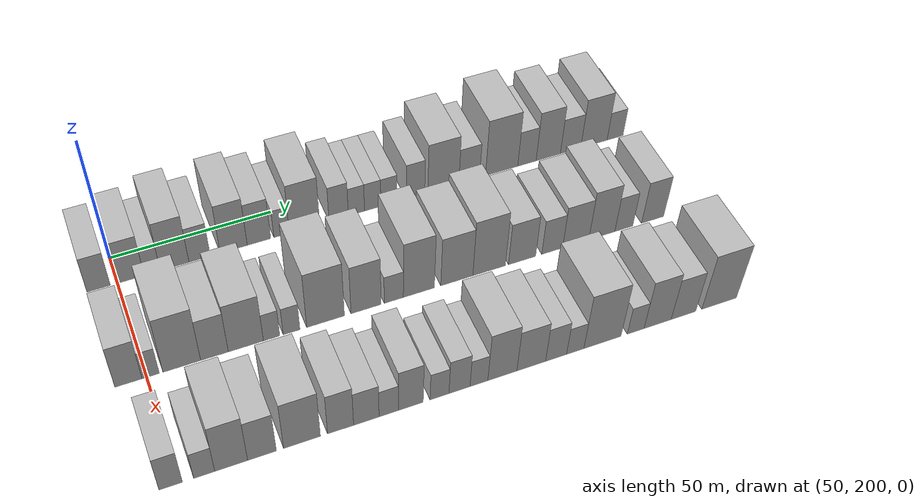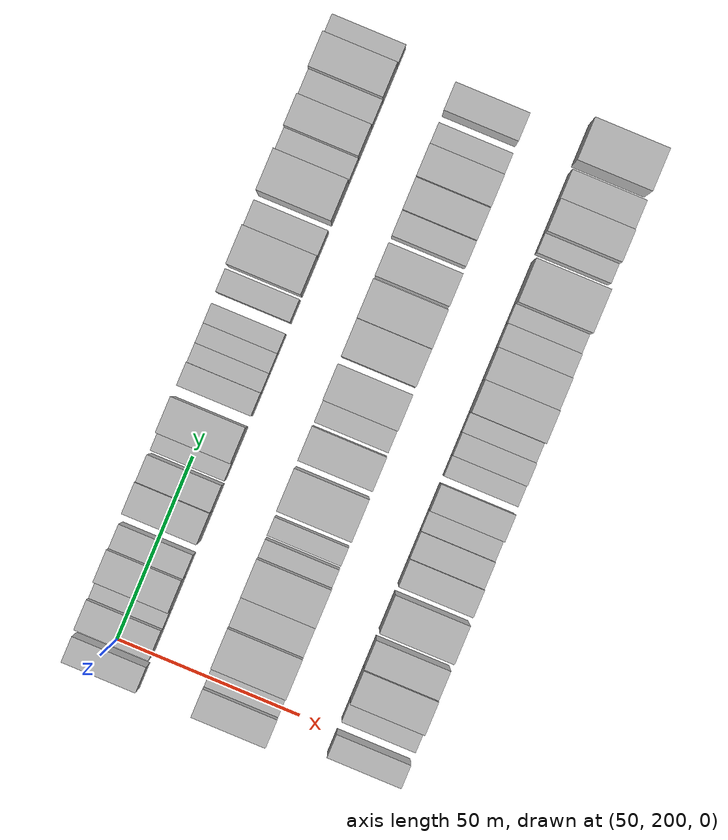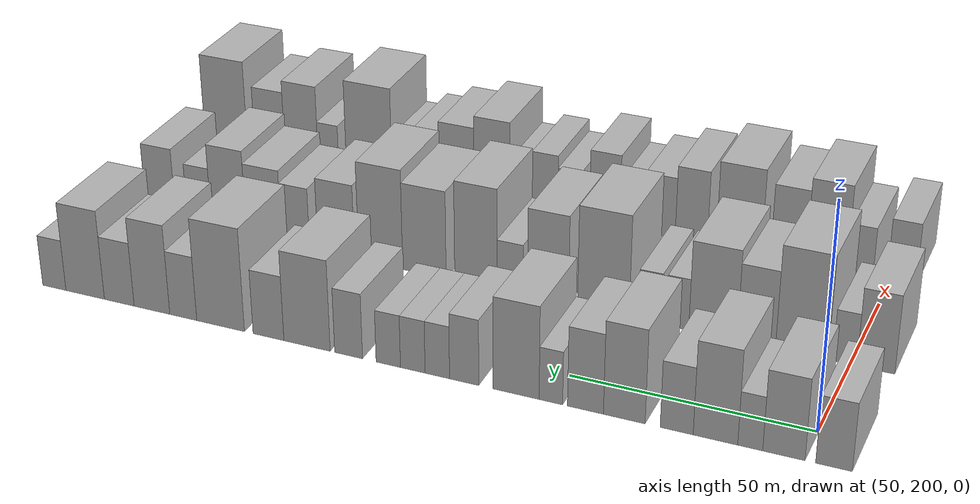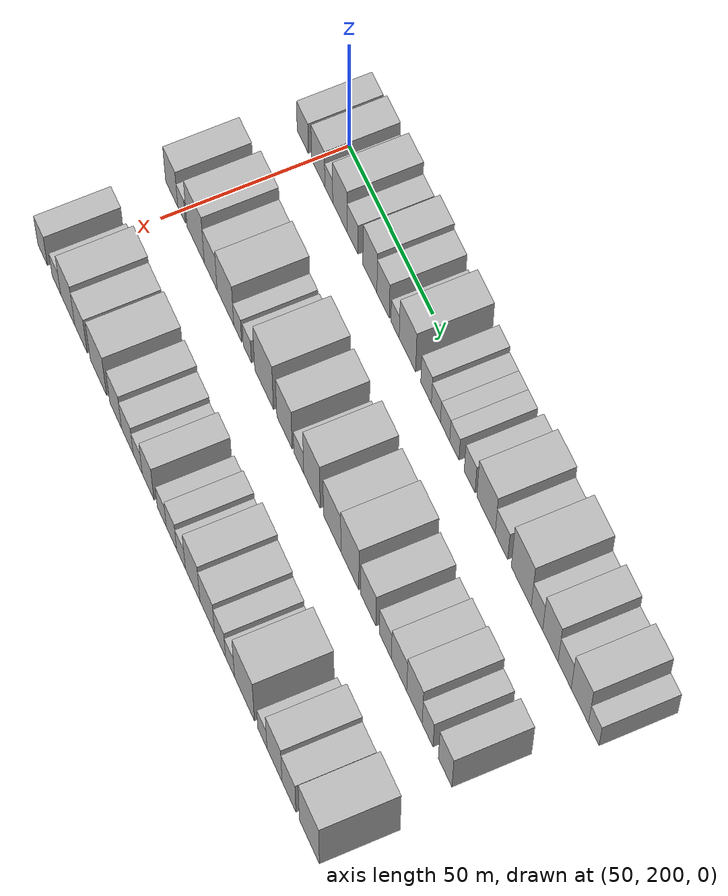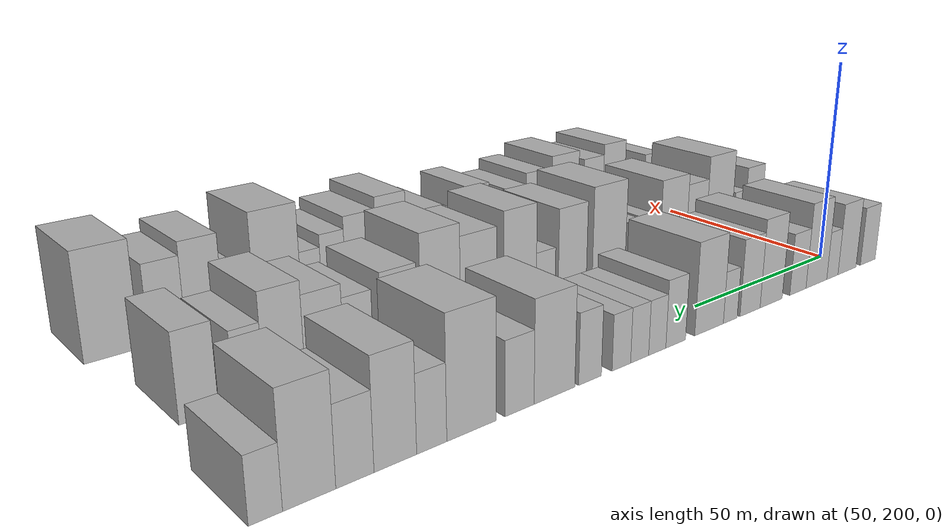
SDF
<sdf version="1.6">
 <world name="default">
  <model name="building_58">
   <static>1</static>
   <pose>50.0000 194.3728 0 0.000000 0.000000 0.000000</pose>
   <link name="link">
    <pose>0 0 7.50 0 0 0</pose>
    <collision name="collision"><geometry><box><size>20.0000 6.9147 15.0000</size></box></geometry></collision>
    <visual name="visual">
     <cast_shadows>0</cast_shadows>
     <geometry><box><size>20.0000 6.9147 15.0000</size></box></geometry>
     <material>
      <script>
       <uri>model://HANNAS_wall/materials/scripts</uri>
       <uri>model://HANNAS_wall/materials/textures</uri>
       <name>vrc/HANNAS_wall</name>
      </script>
     </material>
    </visual>
   </link>
  </model>
  <model name="building_59">
   <static>1</static>
   <pose>50.0000 203.8726 0 0.000000 0.000000 0.000000</pose>
   <link name="link">
    <pose>0 0 9.00 0 0 0</pose>
    <collision name="collision"><geometry><box><size>20.0000 8.0849 18.0000</size></box></geometry></collision>
    <visual name="visual">
     <cast_shadows>0</cast_shadows>
     <geometry><box><size>20.0000 8.0849 18.0000</size></box></geometry>
     <material>
      <script>
       <uri>model://HANNAS_wall/materials/scripts</uri>
       <uri>model://HANNAS_wall/materials/textures</uri>
       <name>vrc/HANNAS_wall</name>
      </script>
     </material>
    </visual>
   </link>
  </model>
  <model name="building_60">
   <static>1</static>
   <pose>50.0000 210.3365 0 0.000000 0.000000 0.000000</pose>
   <link name="link">
    <pose>0 0 6.00 0 0 0</pose>
    <collision name="collision"><geometry><box><size>20.0000 4.8430 12.0000</size></box></geometry></collision>
    <visual name="visual">
     <cast_shadows>0</cast_shadows>
     <geometry><box><size>20.0000 4.8430 12.0000</size></box></geometry>
     <material>
      <script>
       <uri>model://HANNAS_wall/materials/scripts</uri>
       <uri>model://HANNAS_wall/materials/textures</uri>
       <name>vrc/HANNAS_wall</name>
      </script>
     </material>
    </visual>
   </link>
  </model>
  <model name="building_61">
   <static>1</static>
   <pose>50.0000 217.1121 0 0.000000 0.000000 0.000000</pose>
   <link name="link">
    <pose>0 0 10.50 0 0 0</pose>
    <collision name="collision"><geometry><box><size>20.0000 8.7081 21.0000</size></box></geometry></collision>
    <visual name="visual">
     <cast_shadows>0</cast_shadows>
     <geometry><box><size>20.0000 8.7081 21.0000</size></box></geometry>
     <material>
      <script>
       <uri>model://HANNAS_wall/materials/scripts</uri>
       <uri>model://HANNAS_wall/materials/textures</uri>
       <name>vrc/HANNAS_wall</name>
      </script>
     </material>
    </visual>
   </link>
  </model>
  <model name="building_62">
   <static>1</static>
   <pose>50.0000 224.7363 0 0.000000 0.000000 0.000000</pose>
   <link name="link">
    <pose>0 0 7.50 0 0 0</pose>
    <collision name="collision"><geometry><box><size>20.0000 6.5404 15.0000</size></box></geometry></collision>
    <visual name="visual">
     <cast_shadows>0</cast_shadows>
     <geometry><box><size>20.0000 6.5404 15.0000</size></box></geometry>
     <material>
      <script>
       <uri>model://HANNAS_wall/materials/scripts</uri>
       <uri>model://HANNAS_wall/materials/textures</uri>
       <name>vrc/HANNAS_wall</name>
      </script>
     </material>
    </visual>
   </link>
  </model>
  <model name="building_63">
   <static>1</static>
   <pose>50.0000 235.2169 0 0.000000 0.000000 0.000000</pose>
   <link name="link">
    <pose>0 0 10.50 0 0 0</pose>
    <collision name="collision"><geometry><box><size>20.0000 8.4208 21.0000</size></box></geometry></collision>
    <visual name="visual">
     <cast_shadows>0</cast_shadows>
     <geometry><box><size>20.0000 8.4208 21.0000</size></box></geometry>
     <material>
      <script>
       <uri>model://HANNAS_wall/materials/scripts</uri>
       <uri>model://HANNAS_wall/materials/textures</uri>
       <name>vrc/HANNAS_wall</name>
      </script>
     </material>
    </visual>
   </link>
  </model>
  <model name="building_64">
   <static>1</static>
   <pose>50.0000 243.1015 0 0.000000 0.000000 0.000000</pose>
   <link name="link">
    <pose>0 0 9.00 0 0 0</pose>
    <collision name="collision"><geometry><box><size>20.0000 7.3483 18.0000</size></box></geometry></collision>
    <visual name="visual">
     <cast_shadows>0</cast_shadows>
     <geometry><box><size>20.0000 7.3483 18.0000</size></box></geometry>
     <material>
      <script>
       <uri>model://HANNAS_wall/materials/scripts</uri>
       <uri>model://HANNAS_wall/materials/textures</uri>
       <name>vrc/HANNAS_wall</name>
      </script>
     </material>
    </visual>
   </link>
  </model>
  <model name="building_65">
   <static>1</static>
   <pose>50.0000 250.2090 0 0.000000 0.000000 0.000000</pose>
   <link name="link">
    <pose>0 0 6.00 0 0 0</pose>
    <collision name="collision"><geometry><box><size>20.0000 4.8668 12.0000</size></box></geometry></collision>
    <visual name="visual">
     <cast_shadows>0</cast_shadows>
     <geometry><box><size>20.0000 4.8668 12.0000</size></box></geometry>
     <material>
      <script>
       <uri>model://HANNAS_wall/materials/scripts</uri>
       <uri>model://HANNAS_wall/materials/textures</uri>
       <name>vrc/HANNAS_wall</name>
      </script>
     </material>
    </visual>
   </link>
  </model>
  <model name="building_66">
   <static>1</static>
   <pose>50.0000 257.4757 0 0.000000 0.000000 0.000000</pose>
   <link name="link">
    <pose>0 0 10.50 0 0 0</pose>
    <collision name="collision"><geometry><box><size>20.0000 9.6667 21.0000</size></box></geometry></collision>
    <visual name="visual">
     <cast_shadows>0</cast_shadows>
     <geometry><box><size>20.0000 9.6667 21.0000</size></box></geometry>
     <material>
      <script>
       <uri>model://HANNAS_wall/materials/scripts</uri>
       <uri>model://HANNAS_wall/materials/textures</uri>
       <name>vrc/HANNAS_wall</name>
      </script>
     </material>
    </visual>
   </link>
  </model>
  <model name="building_67">
   <static>1</static>
   <pose>50.0000 268.4259 0 0.000000 0.000000 0.000000</pose>
   <link name="link">
    <pose>0 0 7.50 0 0 0</pose>
    <collision name="collision"><geometry><box><size>20.0000 6.2337 15.0000</size></box></geometry></collision>
    <visual name="visual">
     <cast_shadows>0</cast_shadows>
     <geometry><box><size>20.0000 6.2337 15.0000</size></box></geometry>
     <material>
      <script>
       <uri>model://HANNAS_wall/materials/scripts</uri>
       <uri>model://HANNAS_wall/materials/textures</uri>
       <name>vrc/HANNAS_wall</name>
      </script>
     </material>
    </visual>
   </link>
  </model>
  <model name="building_68">
   <static>1</static>
   <pose>50.0000 274.1723 0 0.000000 0.000000 0.000000</pose>
   <link name="link">
    <pose>0 0 6.00 0 0 0</pose>
    <collision name="collision"><geometry><box><size>20.0000 5.2593 12.0000</size></box></geometry></collision>
    <visual name="visual">
     <cast_shadows>0</cast_shadows>
     <geometry><box><size>20.0000 5.2593 12.0000</size></box></geometry>
     <material>
      <script>
       <uri>model://HANNAS_wall/materials/scripts</uri>
       <uri>model://HANNAS_wall/materials/textures</uri>
       <name>vrc/HANNAS_wall</name>
      </script>
     </material>
    </visual>
   </link>
  </model>
  <model name="building_69">
   <static>1</static>
   <pose>50.0000 279.4774 0 0.000000 0.000000 0.000000</pose>
   <link name="link">
    <pose>0 0 6.00 0 0 0</pose>
    <collision name="collision"><geometry><box><size>20.0000 5.3509 12.0000</size></box></geometry></collision>
    <visual name="visual">
     <cast_shadows>0</cast_shadows>
     <geometry><box><size>20.0000 5.3509 12.0000</size></box></geometry>
     <material>
      <script>
       <uri>model://HANNAS_wall/materials/scripts</uri>
       <uri>model://HANNAS_wall/materials/textures</uri>
       <name>vrc/HANNAS_wall</name>
      </script>
     </material>
    </visual>
   </link>
  </model>
  <model name="building_70">
   <static>1</static>
   <pose>50.0000 284.8204 0 0.000000 0.000000 0.000000</pose>
   <link name="link">
    <pose>0 0 6.00 0 0 0</pose>
    <collision name="collision"><geometry><box><size>20.0000 5.3351 12.0000</size></box></geometry></collision>
    <visual name="visual">
     <cast_shadows>0</cast_shadows>
     <geometry><box><size>20.0000 5.3351 12.0000</size></box></geometry>
     <material>
      <script>
       <uri>model://HANNAS_wall/materials/scripts</uri>
       <uri>model://HANNAS_wall/materials/textures</uri>
       <name>vrc/HANNAS_wall</name>
      </script>
     </material>
    </visual>
   </link>
  </model>
  <model name="building_71">
   <static>1</static>
   <pose>50.0000 293.5836 0 0.000000 0.000000 0.000000</pose>
   <link name="link">
    <pose>0 0 7.50 0 0 0</pose>
    <collision name="collision"><geometry><box><size>20.0000 6.1914 15.0000</size></box></geometry></collision>
    <visual name="visual">
     <cast_shadows>0</cast_shadows>
     <geometry><box><size>20.0000 6.1914 15.0000</size></box></geometry>
     <material>
      <script>
       <uri>model://HANNAS_wall/materials/scripts</uri>
       <uri>model://HANNAS_wall/materials/textures</uri>
       <name>vrc/HANNAS_wall</name>
      </script>
     </material>
    </visual>
   </link>
  </model>
  <model name="building_72">
   <static>1</static>
   <pose>50.0000 302.9027 0 0.000000 0.000000 0.000000</pose>
   <link name="link">
    <pose>0 0 10.50 0 0 0</pose>
    <collision name="collision"><geometry><box><size>20.0000 10.4468 21.0000</size></box></geometry></collision>
    <visual name="visual">
     <cast_shadows>0</cast_shadows>
     <geometry><box><size>20.0000 10.4468 21.0000</size></box></geometry>
     <material>
      <script>
       <uri>model://HANNAS_wall/materials/scripts</uri>
       <uri>model://HANNAS_wall/materials/textures</uri>
       <name>vrc/HANNAS_wall</name>
      </script>
     </material>
    </visual>
   </link>
  </model>
  <model name="building_73">
   <static>1</static>
   <pose>50.0000 311.6492 0 0.000000 0.000000 0.000000</pose>
   <link name="link">
    <pose>0 0 7.50 0 0 0</pose>
    <collision name="collision"><geometry><box><size>20.0000 7.0461 15.0000</size></box></geometry></collision>
    <visual name="visual">
     <cast_shadows>0</cast_shadows>
     <geometry><box><size>20.0000 7.0461 15.0000</size></box></geometry>
     <material>
      <script>
       <uri>model://HANNAS_wall/materials/scripts</uri>
       <uri>model://HANNAS_wall/materials/textures</uri>
       <name>vrc/HANNAS_wall</name>
      </script>
     </material>
    </visual>
   </link>
  </model>
  <model name="building_74">
   <static>1</static>
   <pose>50.0000 322.7267 0 0.000000 0.000000 0.000000</pose>
   <link name="link">
    <pose>0 0 12.00 0 0 0</pose>
    <collision name="collision"><geometry><box><size>20.0000 11.1089 24.0000</size></box></geometry></collision>
    <visual name="visual">
     <cast_shadows>0</cast_shadows>
     <geometry><box><size>20.0000 11.1089 24.0000</size></box></geometry>
     <material>
      <script>
       <uri>model://HANNAS_wall/materials/scripts</uri>
       <uri>model://HANNAS_wall/materials/textures</uri>
       <name>vrc/HANNAS_wall</name>
      </script>
     </material>
    </visual>
   </link>
  </model>
  <model name="building_75">
   <static>1</static>
   <pose>50.0000 331.4624 0 0.000000 0.000000 0.000000</pose>
   <link name="link">
    <pose>0 0 7.50 0 0 0</pose>
    <collision name="collision"><geometry><box><size>20.0000 6.3625 15.0000</size></box></geometry></collision>
    <visual name="visual">
     <cast_shadows>0</cast_shadows>
     <geometry><box><size>20.0000 6.3625 15.0000</size></box></geometry>
     <material>
      <script>
       <uri>model://HANNAS_wall/materials/scripts</uri>
       <uri>model://HANNAS_wall/materials/textures</uri>
       <name>vrc/HANNAS_wall</name>
      </script>
     </material>
    </visual>
   </link>
  </model>
  <model name="building_76">
   <static>1</static>
   <pose>50.0000 338.9023 0 0.000000 0.000000 0.000000</pose>
   <link name="link">
    <pose>0 0 10.50 0 0 0</pose>
    <collision name="collision"><geometry><box><size>20.0000 8.5175 21.0000</size></box></geometry></collision>
    <visual name="visual">
     <cast_shadows>0</cast_shadows>
     <geometry><box><size>20.0000 8.5175 21.0000</size></box></geometry>
     <material>
      <script>
       <uri>model://HANNAS_wall/materials/scripts</uri>
       <uri>model://HANNAS_wall/materials/textures</uri>
       <name>vrc/HANNAS_wall</name>
      </script>
     </material>
    </visual>
   </link>
  </model>
  <model name="building_77">
   <static>1</static>
   <pose>50.0000 346.7569 0 0.000000 0.000000 0.000000</pose>
   <link name="link">
    <pose>0 0 7.50 0 0 0</pose>
    <collision name="collision"><geometry><box><size>20.0000 7.1917 15.0000</size></box></geometry></collision>
    <visual name="visual">
     <cast_shadows>0</cast_shadows>
     <geometry><box><size>20.0000 7.1917 15.0000</size></box></geometry>
     <material>
      <script>
       <uri>model://HANNAS_wall/materials/scripts</uri>
       <uri>model://HANNAS_wall/materials/textures</uri>
       <name>vrc/HANNAS_wall</name>
      </script>
     </material>
    </visual>
   </link>
  </model>
  <model name="building_78">
   <static>1</static>
   <pose>50.0000 355.0587 0 0.000000 0.000000 0.000000</pose>
   <link name="link">
    <pose>0 0 10.50 0 0 0</pose>
    <collision name="collision"><geometry><box><size>20.0000 9.4119 21.0000</size></box></geometry></collision>
    <visual name="visual">
     <cast_shadows>0</cast_shadows>
     <geometry><box><size>20.0000 9.4119 21.0000</size></box></geometry>
     <material>
      <script>
       <uri>model://HANNAS_wall/materials/scripts</uri>
       <uri>model://HANNAS_wall/materials/textures</uri>
       <name>vrc/HANNAS_wall</name>
      </script>
     </material>
    </visual>
   </link>
  </model>
  <model name="building_79">
   <static>1</static>
   <pose>50.0000 362.6301 0 0.000000 0.000000 0.000000</pose>
   <link name="link">
    <pose>0 0 6.00 0 0 0</pose>
    <collision name="collision"><geometry><box><size>20.0000 5.7309 12.0000</size></box></geometry></collision>
    <visual name="visual">
     <cast_shadows>0</cast_shadows>
     <geometry><box><size>20.0000 5.7309 12.0000</size></box></geometry>
     <material>
      <script>
       <uri>model://HANNAS_wall/materials/scripts</uri>
       <uri>model://HANNAS_wall/materials/textures</uri>
       <name>vrc/HANNAS_wall</name>
      </script>
     </material>
    </visual>
   </link>
  </model>
  <model name="building_146">
   <static>1</static>
   <pose>85.0000 194.8193 0 0.000000 0.000000 0.000000</pose>
   <link name="link">
    <pose>0 0 9.00 0 0 0</pose>
    <collision name="collision"><geometry><box><size>20.0000 7.6414 18.0000</size></box></geometry></collision>
    <visual name="visual">
     <cast_shadows>0</cast_shadows>
     <geometry><box><size>20.0000 7.6414 18.0000</size></box></geometry>
     <material>
      <script>
       <uri>model://HANNAS_wall/materials/scripts</uri>
       <uri>model://HANNAS_wall/materials/textures</uri>
       <name>vrc/HANNAS_wall</name>
      </script>
     </material>
    </visual>
   </link>
  </model>
  <model name="building_147">
   <static>1</static>
   <pose>85.0000 201.0676 0 0.000000 0.000000 0.000000</pose>
   <link name="link">
    <pose>0 0 6.00 0 0 0</pose>
    <collision name="collision"><geometry><box><size>20.0000 4.8550 12.0000</size></box></geometry></collision>
    <visual name="visual">
     <cast_shadows>0</cast_shadows>
     <geometry><box><size>20.0000 4.8550 12.0000</size></box></geometry>
     <material>
      <script>
       <uri>model://HANNAS_wall/materials/scripts</uri>
       <uri>model://HANNAS_wall/materials/textures</uri>
       <name>vrc/HANNAS_wall</name>
      </script>
     </material>
    </visual>
   </link>
  </model>
  <model name="building_148">
   <static>1</static>
   <pose>85.0000 209.8922 0 0.000000 0.000000 0.000000</pose>
   <link name="link">
    <pose>0 0 12.00 0 0 0</pose>
    <collision name="collision"><geometry><box><size>20.0000 10.7941 24.0000</size></box></geometry></collision>
    <visual name="visual">
     <cast_shadows>0</cast_shadows>
     <geometry><box><size>20.0000 10.7941 24.0000</size></box></geometry>
     <material>
      <script>
       <uri>model://HANNAS_wall/materials/scripts</uri>
       <uri>model://HANNAS_wall/materials/textures</uri>
       <name>vrc/HANNAS_wall</name>
      </script>
     </material>
    </visual>
   </link>
  </model>
  <model name="building_149">
   <static>1</static>
   <pose>85.0000 219.2916 0 0.000000 0.000000 0.000000</pose>
   <link name="link">
    <pose>0 0 9.00 0 0 0</pose>
    <collision name="collision"><geometry><box><size>20.0000 8.0048 18.0000</size></box></geometry></collision>
    <visual name="visual">
     <cast_shadows>0</cast_shadows>
     <geometry><box><size>20.0000 8.0048 18.0000</size></box></geometry>
     <material>
      <script>
       <uri>model://HANNAS_wall/materials/scripts</uri>
       <uri>model://HANNAS_wall/materials/textures</uri>
       <name>vrc/HANNAS_wall</name>
      </script>
     </material>
    </visual>
   </link>
  </model>
  <model name="building_150">
   <static>1</static>
   <pose>85.0000 228.4277 0 0.000000 0.000000 0.000000</pose>
   <link name="link">
    <pose>0 0 10.50 0 0 0</pose>
    <collision name="collision"><geometry><box><size>20.0000 10.2674 21.0000</size></box></geometry></collision>
    <visual name="visual">
     <cast_shadows>0</cast_shadows>
     <geometry><box><size>20.0000 10.2674 21.0000</size></box></geometry>
     <material>
      <script>
       <uri>model://HANNAS_wall/materials/scripts</uri>
       <uri>model://HANNAS_wall/materials/textures</uri>
       <name>vrc/HANNAS_wall</name>
      </script>
     </material>
    </visual>
   </link>
  </model>
  <model name="building_151">
   <static>1</static>
   <pose>85.0000 235.9817 0 0.000000 0.000000 0.000000</pose>
   <link name="link">
    <pose>0 0 6.00 0 0 0</pose>
    <collision name="collision"><geometry><box><size>20.0000 4.8405 12.0000</size></box></geometry></collision>
    <visual name="visual">
     <cast_shadows>0</cast_shadows>
     <geometry><box><size>20.0000 4.8405 12.0000</size></box></geometry>
     <material>
      <script>
       <uri>model://HANNAS_wall/materials/scripts</uri>
       <uri>model://HANNAS_wall/materials/textures</uri>
       <name>vrc/HANNAS_wall</name>
      </script>
     </material>
    </visual>
   </link>
  </model>
  <model name="building_152">
   <static>1</static>
   <pose>85.0000 241.9017 0 0.000000 0.000000 0.000000</pose>
   <link name="link">
    <pose>0 0 6.00 0 0 0</pose>
    <collision name="collision"><geometry><box><size>20.0000 4.9996 12.0000</size></box></geometry></collision>
    <visual name="visual">
     <cast_shadows>0</cast_shadows>
     <geometry><box><size>20.0000 4.9996 12.0000</size></box></geometry>
     <material>
      <script>
       <uri>model://HANNAS_wall/materials/scripts</uri>
       <uri>model://HANNAS_wall/materials/textures</uri>
       <name>vrc/HANNAS_wall</name>
      </script>
     </material>
    </visual>
   </link>
  </model>
  <model name="building_153">
   <static>1</static>
   <pose>85.0000 252.0933 0 0.000000 0.000000 0.000000</pose>
   <link name="link">
    <pose>0 0 12.00 0 0 0</pose>
    <collision name="collision"><geometry><box><size>20.0000 11.3835 24.0000</size></box></geometry></collision>
    <visual name="visual">
     <cast_shadows>0</cast_shadows>
     <geometry><box><size>20.0000 11.3835 24.0000</size></box></geometry>
     <material>
      <script>
       <uri>model://HANNAS_wall/materials/scripts</uri>
       <uri>model://HANNAS_wall/materials/textures</uri>
       <name>vrc/HANNAS_wall</name>
      </script>
     </material>
    </visual>
   </link>
  </model>
  <model name="building_154">
   <static>1</static>
   <pose>85.0000 264.3814 0 0.000000 0.000000 0.000000</pose>
   <link name="link">
    <pose>0 0 10.50 0 0 0</pose>
    <collision name="collision"><geometry><box><size>20.0000 9.1925 21.0000</size></box></geometry></collision>
    <visual name="visual">
     <cast_shadows>0</cast_shadows>
     <geometry><box><size>20.0000 9.1925 21.0000</size></box></geometry>
     <material>
      <script>
       <uri>model://HANNAS_wall/materials/scripts</uri>
       <uri>model://HANNAS_wall/materials/textures</uri>
       <name>vrc/HANNAS_wall</name>
      </script>
     </material>
    </visual>
   </link>
  </model>
  <model name="building_155">
   <static>1</static>
   <pose>85.0000 272.9328 0 0.000000 0.000000 0.000000</pose>
   <link name="link">
    <pose>0 0 6.00 0 0 0</pose>
    <collision name="collision"><geometry><box><size>20.0000 5.9103 12.0000</size></box></geometry></collision>
    <visual name="visual">
     <cast_shadows>0</cast_shadows>
     <geometry><box><size>20.0000 5.9103 12.0000</size></box></geometry>
     <material>
      <script>
       <uri>model://HANNAS_wall/materials/scripts</uri>
       <uri>model://HANNAS_wall/materials/textures</uri>
       <name>vrc/HANNAS_wall</name>
      </script>
     </material>
    </visual>
   </link>
  </model>
  <model name="building_156">
   <static>1</static>
   <pose>85.0000 280.7438 0 0.000000 0.000000 0.000000</pose>
   <link name="link">
    <pose>0 0 12.00 0 0 0</pose>
    <collision name="collision"><geometry><box><size>20.0000 9.7118 24.0000</size></box></geometry></collision>
    <visual name="visual">
     <cast_shadows>0</cast_shadows>
     <geometry><box><size>20.0000 9.7118 24.0000</size></box></geometry>
     <material>
      <script>
       <uri>model://HANNAS_wall/materials/scripts</uri>
       <uri>model://HANNAS_wall/materials/textures</uri>
       <name>vrc/HANNAS_wall</name>
      </script>
     </material>
    </visual>
   </link>
  </model>
  <model name="building_157">
   <static>1</static>
   <pose>85.0000 292.6881 0 0.000000 0.000000 0.000000</pose>
   <link name="link">
    <pose>0 0 10.50 0 0 0</pose>
    <collision name="collision"><geometry><box><size>20.0000 10.1768 21.0000</size></box></geometry></collision>
    <visual name="visual">
     <cast_shadows>0</cast_shadows>
     <geometry><box><size>20.0000 10.1768 21.0000</size></box></geometry>
     <material>
      <script>
       <uri>model://HANNAS_wall/materials/scripts</uri>
       <uri>model://HANNAS_wall/materials/textures</uri>
       <name>vrc/HANNAS_wall</name>
      </script>
     </material>
    </visual>
   </link>
  </model>
  <model name="building_158">
   <static>1</static>
   <pose>85.0000 303.0024 0 0.000000 0.000000 0.000000</pose>
   <link name="link">
    <pose>0 0 12.00 0 0 0</pose>
    <collision name="collision"><geometry><box><size>20.0000 10.4519 24.0000</size></box></geometry></collision>
    <visual name="visual">
     <cast_shadows>0</cast_shadows>
     <geometry><box><size>20.0000 10.4519 24.0000</size></box></geometry>
     <material>
      <script>
       <uri>model://HANNAS_wall/materials/scripts</uri>
       <uri>model://HANNAS_wall/materials/textures</uri>
       <name>vrc/HANNAS_wall</name>
      </script>
     </material>
    </visual>
   </link>
  </model>
  <model name="building_159">
   <static>1</static>
   <pose>85.0000 313.6577 0 0.000000 0.000000 0.000000</pose>
   <link name="link">
    <pose>0 0 9.00 0 0 0</pose>
    <collision name="collision"><geometry><box><size>20.0000 8.8586 18.0000</size></box></geometry></collision>
    <visual name="visual">
     <cast_shadows>0</cast_shadows>
     <geometry><box><size>20.0000 8.8586 18.0000</size></box></geometry>
     <material>
      <script>
       <uri>model://HANNAS_wall/materials/scripts</uri>
       <uri>model://HANNAS_wall/materials/textures</uri>
       <name>vrc/HANNAS_wall</name>
      </script>
     </material>
    </visual>
   </link>
  </model>
  <model name="building_160">
   <static>1</static>
   <pose>85.0000 323.5166 0 0.000000 0.000000 0.000000</pose>
   <link name="link">
    <pose>0 0 7.50 0 0 0</pose>
    <collision name="collision"><geometry><box><size>20.0000 6.8592 15.0000</size></box></geometry></collision>
    <visual name="visual">
     <cast_shadows>0</cast_shadows>
     <geometry><box><size>20.0000 6.8592 15.0000</size></box></geometry>
     <material>
      <script>
       <uri>model://HANNAS_wall/materials/scripts</uri>
       <uri>model://HANNAS_wall/materials/textures</uri>
       <name>vrc/HANNAS_wall</name>
      </script>
     </material>
    </visual>
   </link>
  </model>
  <model name="building_161">
   <static>1</static>
   <pose>85.0000 331.3080 0 0.000000 0.000000 0.000000</pose>
   <link name="link">
    <pose>0 0 9.00 0 0 0</pose>
    <collision name="collision"><geometry><box><size>20.0000 8.7237 18.0000</size></box></geometry></collision>
    <visual name="visual">
     <cast_shadows>0</cast_shadows>
     <geometry><box><size>20.0000 8.7237 18.0000</size></box></geometry>
     <material>
      <script>
       <uri>model://HANNAS_wall/materials/scripts</uri>
       <uri>model://HANNAS_wall/materials/textures</uri>
       <name>vrc/HANNAS_wall</name>
      </script>
     </material>
    </visual>
   </link>
  </model>
  <model name="building_162">
   <static>1</static>
   <pose>85.0000 340.0414 0 0.000000 0.000000 0.000000</pose>
   <link name="link">
    <pose>0 0 10.50 0 0 0</pose>
    <collision name="collision"><geometry><box><size>20.0000 8.7431 21.0000</size></box></geometry></collision>
    <visual name="visual">
     <cast_shadows>0</cast_shadows>
     <geometry><box><size>20.0000 8.7431 21.0000</size></box></geometry>
     <material>
      <script>
       <uri>model://HANNAS_wall/materials/scripts</uri>
       <uri>model://HANNAS_wall/materials/textures</uri>
       <name>vrc/HANNAS_wall</name>
      </script>
     </material>
    </visual>
   </link>
  </model>
  <model name="building_163">
   <static>1</static>
   <pose>85.0000 347.4585 0 0.000000 0.000000 0.000000</pose>
   <link name="link">
    <pose>0 0 7.50 0 0 0</pose>
    <collision name="collision"><geometry><box><size>20.0000 6.0912 15.0000</size></box></geometry></collision>
    <visual name="visual">
     <cast_shadows>0</cast_shadows>
     <geometry><box><size>20.0000 6.0912 15.0000</size></box></geometry>
     <material>
      <script>
       <uri>model://HANNAS_wall/materials/scripts</uri>
       <uri>model://HANNAS_wall/materials/textures</uri>
       <name>vrc/HANNAS_wall</name>
      </script>
     </material>
    </visual>
   </link>
  </model>
  <model name="building_164">
   <static>1</static>
   <pose>85.0000 357.2922 0 0.000000 0.000000 0.000000</pose>
   <link name="link">
    <pose>0 0 9.00 0 0 0</pose>
    <collision name="collision"><geometry><box><size>20.0000 7.5762 18.0000</size></box></geometry></collision>
    <visual name="visual">
     <cast_shadows>0</cast_shadows>
     <geometry><box><size>20.0000 7.5762 18.0000</size></box></geometry>
     <material>
      <script>
       <uri>model://HANNAS_wall/materials/scripts</uri>
       <uri>model://HANNAS_wall/materials/textures</uri>
       <name>vrc/HANNAS_wall</name>
      </script>
     </material>
    </visual>
   </link>
  </model>
  <model name="building_229">
   <static>1</static>
   <pose>120.0000 197.5427 0 0.000000 0.000000 0.000000</pose>
   <link name="link">
    <pose>0 0 7.50 0 0 0</pose>
    <collision name="collision"><geometry><box><size>20.0000 6.2690 15.0000</size></box></geometry></collision>
    <visual name="visual">
     <cast_shadows>0</cast_shadows>
     <geometry><box><size>20.0000 6.2690 15.0000</size></box></geometry>
     <material>
      <script>
       <uri>model://HANNAS_wall/materials/scripts</uri>
       <uri>model://HANNAS_wall/materials/textures</uri>
       <name>vrc/HANNAS_wall</name>
      </script>
     </material>
    </visual>
   </link>
  </model>
  <model name="building_230">
   <static>1</static>
   <pose>120.0000 206.5146 0 0.000000 0.000000 0.000000</pose>
   <link name="link">
    <pose>0 0 6.00 0 0 0</pose>
    <collision name="collision"><geometry><box><size>20.0000 5.6747 12.0000</size></box></geometry></collision>
    <visual name="visual">
     <cast_shadows>0</cast_shadows>
     <geometry><box><size>20.0000 5.6747 12.0000</size></box></geometry>
     <material>
      <script>
       <uri>model://HANNAS_wall/materials/scripts</uri>
       <uri>model://HANNAS_wall/materials/textures</uri>
       <name>vrc/HANNAS_wall</name>
      </script>
     </material>
    </visual>
   </link>
  </model>
  <model name="building_231">
   <static>1</static>
   <pose>120.0000 213.8281 0 0.000000 0.000000 0.000000</pose>
   <link name="link">
    <pose>0 0 10.50 0 0 0</pose>
    <collision name="collision"><geometry><box><size>20.0000 8.9524 21.0000</size></box></geometry></collision>
    <visual name="visual">
     <cast_shadows>0</cast_shadows>
     <geometry><box><size>20.0000 8.9524 21.0000</size></box></geometry>
     <material>
      <script>
       <uri>model://HANNAS_wall/materials/scripts</uri>
       <uri>model://HANNAS_wall/materials/textures</uri>
       <name>vrc/HANNAS_wall</name>
      </script>
     </material>
    </visual>
   </link>
  </model>
  <model name="building_232">
   <static>1</static>
   <pose>120.0000 222.2602 0 0.000000 0.000000 0.000000</pose>
   <link name="link">
    <pose>0 0 9.00 0 0 0</pose>
    <collision name="collision"><geometry><box><size>20.0000 7.9118 18.0000</size></box></geometry></collision>
    <visual name="visual">
     <cast_shadows>0</cast_shadows>
     <geometry><box><size>20.0000 7.9118 18.0000</size></box></geometry>
     <material>
      <script>
       <uri>model://HANNAS_wall/materials/scripts</uri>
       <uri>model://HANNAS_wall/materials/textures</uri>
       <name>vrc/HANNAS_wall</name>
      </script>
     </material>
    </visual>
   </link>
  </model>
  <model name="building_233">
   <static>1</static>
   <pose>120.0000 233.3597 0 0.000000 0.000000 0.000000</pose>
   <link name="link">
    <pose>0 0 10.50 0 0 0</pose>
    <collision name="collision"><geometry><box><size>20.0000 10.2873 21.0000</size></box></geometry></collision>
    <visual name="visual">
     <cast_shadows>0</cast_shadows>
     <geometry><box><size>20.0000 10.2873 21.0000</size></box></geometry>
     <material>
      <script>
       <uri>model://HANNAS_wall/materials/scripts</uri>
       <uri>model://HANNAS_wall/materials/textures</uri>
       <name>vrc/HANNAS_wall</name>
      </script>
     </material>
    </visual>
   </link>
  </model>
  <model name="building_234">
   <static>1</static>
   <pose>120.0000 244.2020 0 0.000000 0.000000 0.000000</pose>
   <link name="link">
    <pose>0 0 9.00 0 0 0</pose>
    <collision name="collision"><geometry><box><size>20.0000 7.3973 18.0000</size></box></geometry></collision>
    <visual name="visual">
     <cast_shadows>0</cast_shadows>
     <geometry><box><size>20.0000 7.3973 18.0000</size></box></geometry>
     <material>
      <script>
       <uri>model://HANNAS_wall/materials/scripts</uri>
       <uri>model://HANNAS_wall/materials/textures</uri>
       <name>vrc/HANNAS_wall</name>
      </script>
     </material>
    </visual>
   </link>
  </model>
  <model name="building_235">
   <static>1</static>
   <pose>120.0000 251.5453 0 0.000000 0.000000 0.000000</pose>
   <link name="link">
    <pose>0 0 7.50 0 0 0</pose>
    <collision name="collision"><geometry><box><size>20.0000 7.2892 15.0000</size></box></geometry></collision>
    <visual name="visual">
     <cast_shadows>0</cast_shadows>
     <geometry><box><size>20.0000 7.2892 15.0000</size></box></geometry>
     <material>
      <script>
       <uri>model://HANNAS_wall/materials/scripts</uri>
       <uri>model://HANNAS_wall/materials/textures</uri>
       <name>vrc/HANNAS_wall</name>
      </script>
     </material>
    </visual>
   </link>
  </model>
  <model name="building_236">
   <static>1</static>
   <pose>120.0000 257.9877 0 0.000000 0.000000 0.000000</pose>
   <link name="link">
    <pose>0 0 6.00 0 0 0</pose>
    <collision name="collision"><geometry><box><size>20.0000 5.5956 12.0000</size></box></geometry></collision>
    <visual name="visual">
     <cast_shadows>0</cast_shadows>
     <geometry><box><size>20.0000 5.5956 12.0000</size></box></geometry>
     <material>
      <script>
       <uri>model://HANNAS_wall/materials/scripts</uri>
       <uri>model://HANNAS_wall/materials/textures</uri>
       <name>vrc/HANNAS_wall</name>
      </script>
     </material>
    </visual>
   </link>
  </model>
  <model name="building_237">
   <static>1</static>
   <pose>120.0000 264.3983 0 0.000000 0.000000 0.000000</pose>
   <link name="link">
    <pose>0 0 9.00 0 0 0</pose>
    <collision name="collision"><geometry><box><size>20.0000 7.2257 18.0000</size></box></geometry></collision>
    <visual name="visual">
     <cast_shadows>0</cast_shadows>
     <geometry><box><size>20.0000 7.2257 18.0000</size></box></geometry>
     <material>
      <script>
       <uri>model://HANNAS_wall/materials/scripts</uri>
       <uri>model://HANNAS_wall/materials/textures</uri>
       <name>vrc/HANNAS_wall</name>
      </script>
     </material>
    </visual>
   </link>
  </model>
  <model name="building_238">
   <static>1</static>
   <pose>120.0000 272.7993 0 0.000000 0.000000 0.000000</pose>
   <link name="link">
    <pose>0 0 6.00 0 0 0</pose>
    <collision name="collision"><geometry><box><size>20.0000 5.5763 12.0000</size></box></geometry></collision>
    <visual name="visual">
     <cast_shadows>0</cast_shadows>
     <geometry><box><size>20.0000 5.5763 12.0000</size></box></geometry>
     <material>
      <script>
       <uri>model://HANNAS_wall/materials/scripts</uri>
       <uri>model://HANNAS_wall/materials/textures</uri>
       <name>vrc/HANNAS_wall</name>
      </script>
     </material>
    </visual>
   </link>
  </model>
  <model name="building_239">
   <static>1</static>
   <pose>120.0000 278.7130 0 0.000000 0.000000 0.000000</pose>
   <link name="link">
    <pose>0 0 7.50 0 0 0</pose>
    <collision name="collision"><geometry><box><size>20.0000 6.2513 15.0000</size></box></geometry></collision>
    <visual name="visual">
     <cast_shadows>0</cast_shadows>
     <geometry><box><size>20.0000 6.2513 15.0000</size></box></geometry>
     <material>
      <script>
       <uri>model://HANNAS_wall/materials/scripts</uri>
       <uri>model://HANNAS_wall/materials/textures</uri>
       <name>vrc/HANNAS_wall</name>
      </script>
     </material>
    </visual>
   </link>
  </model>
  <model name="building_240">
   <static>1</static>
   <pose>120.0000 284.5061 0 0.000000 0.000000 0.000000</pose>
   <link name="link">
    <pose>0 0 6.00 0 0 0</pose>
    <collision name="collision"><geometry><box><size>20.0000 5.3349 12.0000</size></box></geometry></collision>
    <visual name="visual">
     <cast_shadows>0</cast_shadows>
     <geometry><box><size>20.0000 5.3349 12.0000</size></box></geometry>
     <material>
      <script>
       <uri>model://HANNAS_wall/materials/scripts</uri>
       <uri>model://HANNAS_wall/materials/textures</uri>
       <name>vrc/HANNAS_wall</name>
      </script>
     </material>
    </visual>
   </link>
  </model>
  <model name="building_241">
   <static>1</static>
   <pose>120.0000 291.5704 0 0.000000 0.000000 0.000000</pose>
   <link name="link">
    <pose>0 0 10.50 0 0 0</pose>
    <collision name="collision"><geometry><box><size>20.0000 8.7937 21.0000</size></box></geometry></collision>
    <visual name="visual">
     <cast_shadows>0</cast_shadows>
     <geometry><box><size>20.0000 8.7937 21.0000</size></box></geometry>
     <material>
      <script>
       <uri>model://HANNAS_wall/materials/scripts</uri>
       <uri>model://HANNAS_wall/materials/textures</uri>
       <name>vrc/HANNAS_wall</name>
      </script>
     </material>
    </visual>
   </link>
  </model>
  <model name="building_242">
   <static>1</static>
   <pose>120.0000 300.3379 0 0.000000 0.000000 0.000000</pose>
   <link name="link">
    <pose>0 0 9.00 0 0 0</pose>
    <collision name="collision"><geometry><box><size>20.0000 8.7414 18.0000</size></box></geometry></collision>
    <visual name="visual">
     <cast_shadows>0</cast_shadows>
     <geometry><box><size>20.0000 8.7414 18.0000</size></box></geometry>
     <material>
      <script>
       <uri>model://HANNAS_wall/materials/scripts</uri>
       <uri>model://HANNAS_wall/materials/textures</uri>
       <name>vrc/HANNAS_wall</name>
      </script>
     </material>
    </visual>
   </link>
  </model>
  <model name="building_243">
   <static>1</static>
   <pose>120.0000 307.9558 0 0.000000 0.000000 0.000000</pose>
   <link name="link">
    <pose>0 0 7.50 0 0 0</pose>
    <collision name="collision"><geometry><box><size>20.0000 6.4944 15.0000</size></box></geometry></collision>
    <visual name="visual">
     <cast_shadows>0</cast_shadows>
     <geometry><box><size>20.0000 6.4944 15.0000</size></box></geometry>
     <material>
      <script>
       <uri>model://HANNAS_wall/materials/scripts</uri>
       <uri>model://HANNAS_wall/materials/textures</uri>
       <name>vrc/HANNAS_wall</name>
      </script>
     </material>
    </visual>
   </link>
  </model>
  <model name="building_244">
   <static>1</static>
   <pose>120.0000 313.8842 0 0.000000 0.000000 0.000000</pose>
   <link name="link">
    <pose>0 0 6.00 0 0 0</pose>
    <collision name="collision"><geometry><box><size>20.0000 5.3625 12.0000</size></box></geometry></collision>
    <visual name="visual">
     <cast_shadows>0</cast_shadows>
     <geometry><box><size>20.0000 5.3625 12.0000</size></box></geometry>
     <material>
      <script>
       <uri>model://HANNAS_wall/materials/scripts</uri>
       <uri>model://HANNAS_wall/materials/textures</uri>
       <name>vrc/HANNAS_wall</name>
      </script>
     </material>
    </visual>
   </link>
  </model>
  <model name="building_245">
   <static>1</static>
   <pose>120.0000 322.4097 0 0.000000 0.000000 0.000000</pose>
   <link name="link">
    <pose>0 0 12.00 0 0 0</pose>
    <collision name="collision"><geometry><box><size>20.0000 11.6884 24.0000</size></box></geometry></collision>
    <visual name="visual">
     <cast_shadows>0</cast_shadows>
     <geometry><box><size>20.0000 11.6884 24.0000</size></box></geometry>
     <material>
      <script>
       <uri>model://HANNAS_wall/materials/scripts</uri>
       <uri>model://HANNAS_wall/materials/textures</uri>
       <name>vrc/HANNAS_wall</name>
      </script>
     </material>
    </visual>
   </link>
  </model>
  <model name="building_246">
   <static>1</static>
   <pose>120.0000 332.9211 0 0.000000 0.000000 0.000000</pose>
   <link name="link">
    <pose>0 0 6.00 0 0 0</pose>
    <collision name="collision"><geometry><box><size>20.0000 5.3346 12.0000</size></box></geometry></collision>
    <visual name="visual">
     <cast_shadows>0</cast_shadows>
     <geometry><box><size>20.0000 5.3346 12.0000</size></box></geometry>
     <material>
      <script>
       <uri>model://HANNAS_wall/materials/scripts</uri>
       <uri>model://HANNAS_wall/materials/textures</uri>
       <name>vrc/HANNAS_wall</name>
      </script>
     </material>
    </visual>
   </link>
  </model>
  <model name="building_247">
   <static>1</static>
   <pose>120.0000 339.9510 0 0.000000 0.000000 0.000000</pose>
   <link name="link">
    <pose>0 0 10.50 0 0 0</pose>
    <collision name="collision"><geometry><box><size>20.0000 8.7251 21.0000</size></box></geometry></collision>
    <visual name="visual">
     <cast_shadows>0</cast_shadows>
     <geometry><box><size>20.0000 8.7251 21.0000</size></box></geometry>
     <material>
      <script>
       <uri>model://HANNAS_wall/materials/scripts</uri>
       <uri>model://HANNAS_wall/materials/textures</uri>
       <name>vrc/HANNAS_wall</name>
      </script>
     </material>
    </visual>
   </link>
  </model>
  <model name="building_248">
   <static>1</static>
   <pose>120.0000 348.3053 0 0.000000 0.000000 0.000000</pose>
   <link name="link">
    <pose>0 0 9.00 0 0 0</pose>
    <collision name="collision"><geometry><box><size>20.0000 7.9835 18.0000</size></box></geometry></collision>
    <visual name="visual">
     <cast_shadows>0</cast_shadows>
     <geometry><box><size>20.0000 7.9835 18.0000</size></box></geometry>
     <material>
      <script>
       <uri>model://HANNAS_wall/materials/scripts</uri>
       <uri>model://HANNAS_wall/materials/textures</uri>
       <name>vrc/HANNAS_wall</name>
      </script>
     </material>
    </visual>
   </link>
  </model>
  <model name="building_249">
   <static>1</static>
   <pose>120.0000 360.0003 0 0.000000 0.000000 0.000000</pose>
   <link name="link">
    <pose>0 0 12.00 0 0 0</pose>
    <collision name="collision"><geometry><box><size>20.0000 11.4066 24.0000</size></box></geometry></collision>
    <visual name="visual">
     <cast_shadows>0</cast_shadows>
     <geometry><box><size>20.0000 11.4066 24.0000</size></box></geometry>
     <material>
      <script>
       <uri>model://HANNAS_wall/materials/scripts</uri>
       <uri>model://HANNAS_wall/materials/textures</uri>
       <name>vrc/HANNAS_wall</name>
      </script>
     </material>
    </visual>
   </link>
  </model>
 </world>
</sdf>
